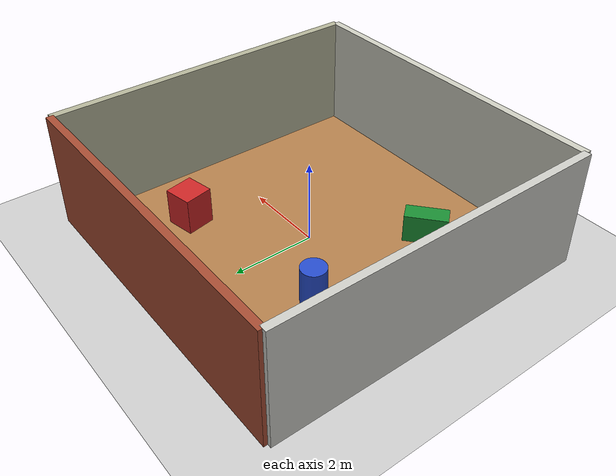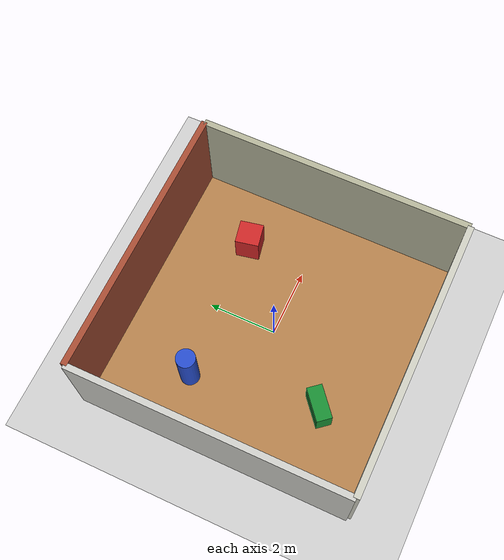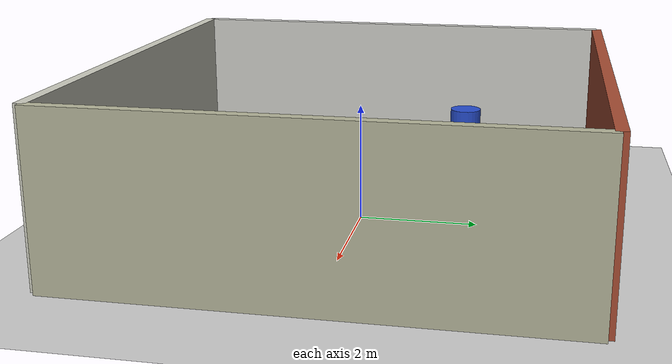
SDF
<?xml version="1.0" ?>
<sdf version="1.6">
  <world name="scenario_1_clean_room">
    <include><uri>model://sun</uri></include>
    <include><uri>model://ground_plane</uri></include>

    <model name="floor">
      <static>true</static>
      <pose>0 0 0.005 0 0 0</pose>
      <link name="link">
        <collision name="collision"><geometry><box><size>8 8 0.01</size></box></geometry></collision>
        <visual name="visual"><geometry><box><size>8 8 0.01</size></box></geometry>
          <material><script><uri>file://media/materials/scripts/gazebo.material</uri><name>Gazebo/WoodFloor</name></script></material>
        </visual>
      </link>
    </model>

    <model name="walls">
      <static>true</static>
      <link name="north"><pose>0 4 1.4 0 0 0</pose>
        <collision name="c"><geometry><box><size>8 0.18 2.8</size></box></geometry></collision>
        <visual name="v"><geometry><box><size>8 0.18 2.8</size></box></geometry><material><script><uri>file://media/materials/scripts/gazebo.material</uri><name>Gazebo/Bricks</name></script></material></visual>
      </link>
      <link name="south"><pose>0 -4 1.4 0 0 0</pose>
        <collision name="c"><geometry><box><size>8 0.18 2.8</size></box></geometry></collision>
        <visual name="v"><geometry><box><size>8 0.18 2.8</size></box></geometry><material><script><uri>file://media/materials/scripts/gazebo.material</uri><name>Gazebo/PaintedWall</name></script></material></visual>
      </link>
      <link name="east"><pose>4 0 1.4 0 0 0</pose>
        <collision name="c"><geometry><box><size>0.18 8 2.8</size></box></geometry></collision>
        <visual name="v"><geometry><box><size>0.18 8 2.8</size></box></geometry><material><script><uri>file://media/materials/scripts/gazebo.material</uri><name>Gazebo/Residential</name></script></material></visual>
      </link>
      <link name="west"><pose>-4 0 1.4 0 0 0</pose>
        <collision name="c"><geometry><box><size>0.18 8 2.8</size></box></geometry></collision>
        <visual name="v"><geometry><box><size>0.18 8 2.8</size></box></geometry><material><script><uri>file://media/materials/scripts/gazebo.material</uri><name>Gazebo/CeilingTiled</name></script></material></visual>
      </link>
    </model>

    <model name="landmarks">
      <static>true</static>
      <link name="red_cube"><pose>2.2 1.8 0.45 0 0 0.2</pose>
        <collision name="c"><geometry><box><size>0.7 0.7 0.9</size></box></geometry></collision>
        <visual name="v"><geometry><box><size>0.7 0.7 0.9</size></box></geometry><material><script><uri>file://media/materials/scripts/gazebo.material</uri><name>Gazebo/Red</name></script></material></visual>
      </link>
      <link name="blue_column"><pose>-2.2 1.6 0.75 0 0 0</pose>
        <collision name="c"><geometry><cylinder><radius>0.28</radius><length>1.5</length></cylinder></geometry></collision>
        <visual name="v"><geometry><cylinder><radius>0.28</radius><length>1.5</length></cylinder></geometry><material><script><uri>file://media/materials/scripts/gazebo.material</uri><name>Gazebo/Blue</name></script></material></visual>
      </link>
      <link name="green_box"><pose>-1.6 -2.1 0.35 0 0 0.7</pose>
        <collision name="c"><geometry><box><size>1.0 0.45 0.7</size></box></geometry></collision>
        <visual name="v"><geometry><box><size>1.0 0.45 0.7</size></box></geometry><material><ambient>0.1 0.55 0.2 1</ambient><diffuse>0.1 0.55 0.2 1</diffuse></material></visual>
      </link>
    </model>
  </world>
</sdf>
